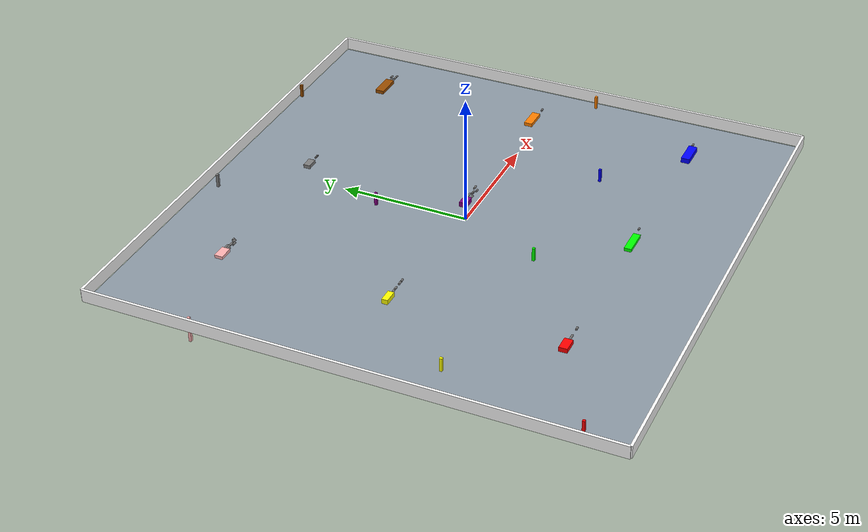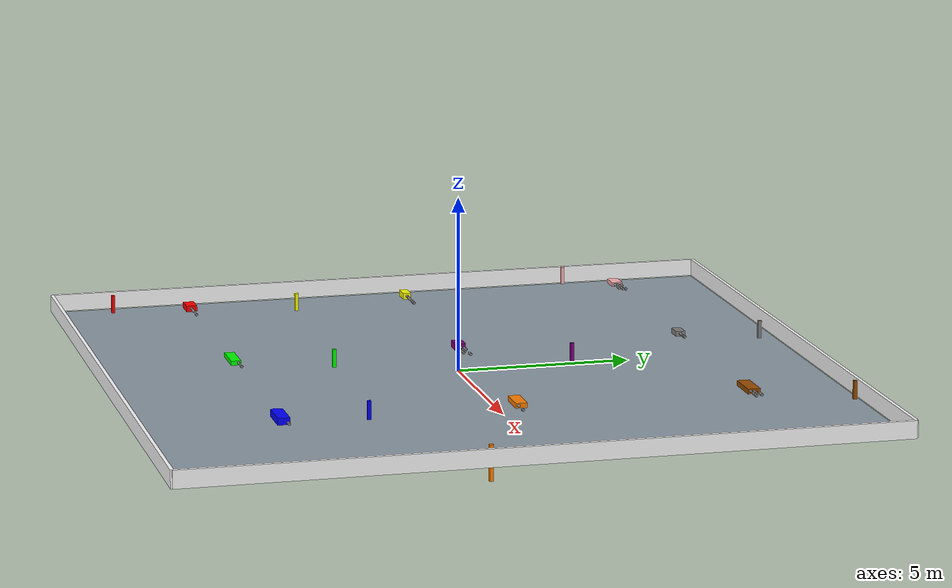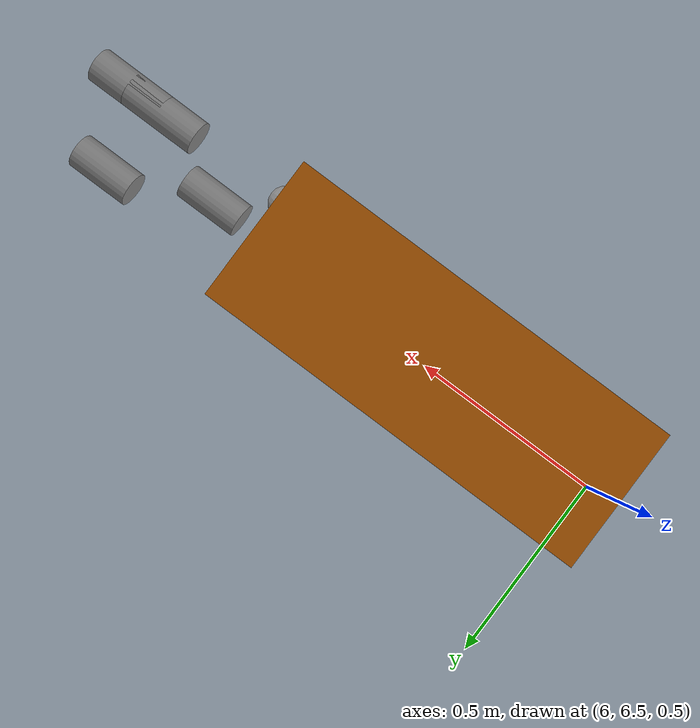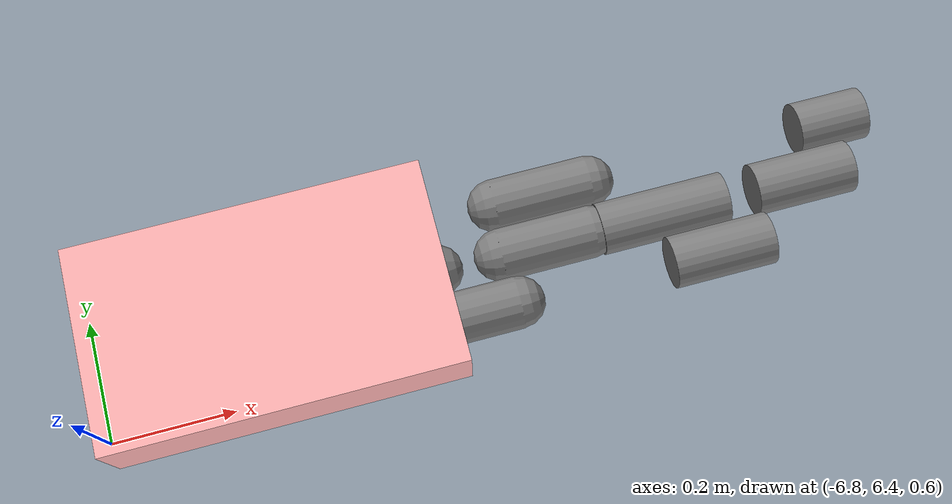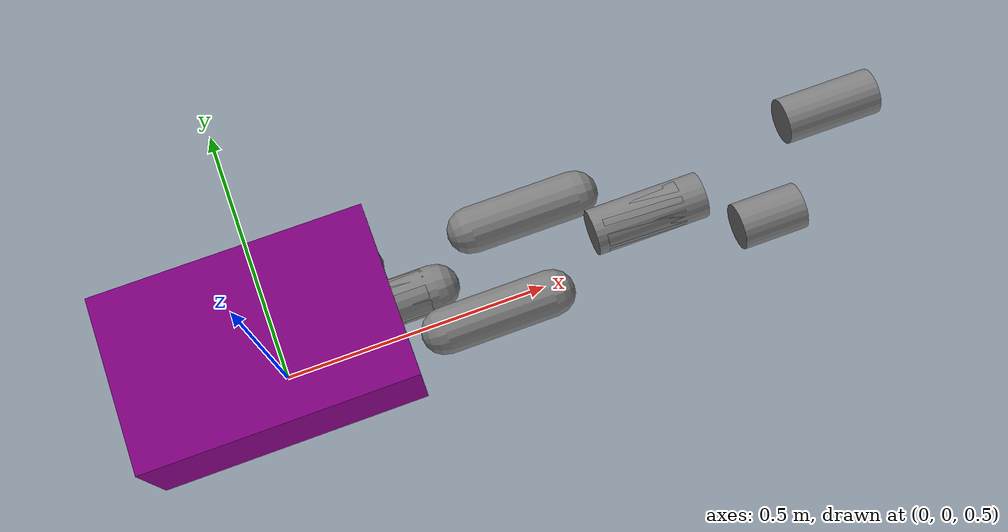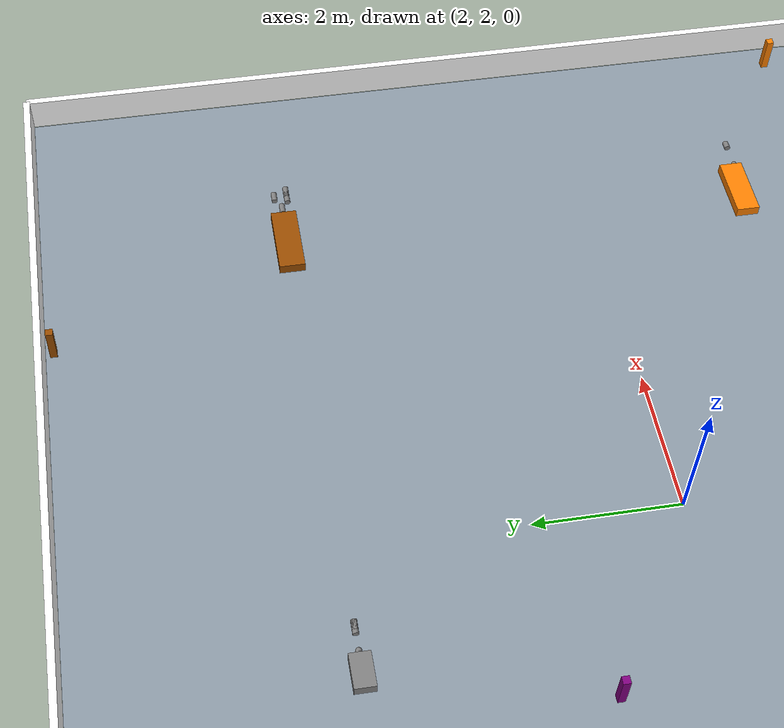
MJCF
<mujoco><option timestep="0.002" /><asset><texture name="checkered" type="2d" builtin="checker" rgb1="0.2 0.3 0.4" rgb2="0.9 0.9 0.9" width="512" height="512" /><material name="MatCheckered" texture="checkered" reflectance="0.5" /><material name="MatPlane" reflectance="0.5" shininess="1" specular="1" /><material name="red" rgba="1 0 0 1" /><material name="green" rgba="0 1 0 1" /><material name="blue" rgba="0 0 1 1" /><material name="yellow" rgba="1 1 0 1" /><material name="purple" rgba="0.5 0 0.5 1" /><material name="orange" rgba="1 0.5 0 1" /><material name="pink" rgba="1 0.7 0.7 1" /><material name="grey" rgba="0.5 0.5 0.5 1" /><material name="brown" rgba="0.6 0.3 0 1" /></asset><worldbody><geom name="floor" type="plane" size="10 10 0.1" pos="0 0 0" material="MatCheckered" /><body name="torso_0" pos="-6.5 -6.5 0.75"><geom name="torso_geom_torso_0" type="box" size="0.2715485036837782 0.1564616013803122 0.08722629893335843" pos="0 0 0" contype="1" conaffinity="1" material="red" /><joint name="torso_0_root" type="free" armature="0" damping="0" limited="false" /><site name="torso_0_site" pos="0 0 0" type="sphere" size="0.01" /><body name="leg_0_1" pos="0.1357742518418891 0 0"><geom name="leg_0_1_upper_geom" type="capsule" fromto="0.0 0.0 0.0 0.13562162647162107 0.0 0.0" size="0.04" /><joint name="leg_0_1_hip_joint" type="ball" damping="2.0" /><body name="leg_0_1_lower" pos="0.13562162647162107 0.0 0.0"><geom name="leg_0_1_lower_geom" type="capsule" fromto="0.13562162647162107 0.0 0.0 0.33354921485505895 0.0 0.0" size="0.04" /><joint name="leg_0_1_knee_joint" type="hinge" axis="0 1 0" range="-90 90" damping="4.0" limited="true" /><body name="leg_0_1_foot" pos="0.33354921485505895 0.0 0.0"><geom name="leg_0_1_foot_geom" type="cylinder" fromto="0.33354921485505895 0.0 0.0 0.4711827492103236 0.0 0.0" size="0.04" /><joint name="leg_0_1_ankle_joint" type="ball" damping="6.0" /></body></body></body></body><geom name="flag_0" type="box" size="0.05 0.05 0.5" pos="-9.50556305023548 -8.293485642836092 0" material="red" contype="1" conaffinity="1" /><body name="torso_1" pos="0 -6.5 0.75"><geom name="torso_geom_torso_1" type="box" size="0.499949666755045 0.13842242802780602 0.0641584101805017" pos="0 0 0" contype="1" conaffinity="2" material="green" /><joint name="torso_1_root" type="free" armature="0" damping="0" limited="false" /><site name="torso_1_site" pos="0 0 0" type="sphere" size="0.01" /><body name="leg_1_1" pos="0 0.06921121401390301 0"><geom name="leg_1_1_upper_geom" type="capsule" fromto="0.0 0.0 0.0 0.17722462562847033 0.0 0.0" size="0.04" /><joint name="leg_1_1_hip_joint" type="ball" damping="2.0" /><body name="leg_1_1_lower" pos="0.17722462562847033 0.0 0.0"><geom name="leg_1_1_lower_geom" type="capsule" fromto="0.17722462562847033 0.0 0.0 0.3434400944607545 0.0 0.0" size="0.04" /><joint name="leg_1_1_knee_joint" type="hinge" axis="0 1 0" range="-90 90" damping="4.0" limited="true" /><body name="leg_1_1_foot" pos="0.3434400944607545 0.0 0.0"><geom name="leg_1_1_foot_geom" type="cylinder" fromto="0.3434400944607545 0.0 0.0 0.447050208322283 0.0 0.0" size="0.04" /><joint name="leg_1_1_ankle_joint" type="ball" damping="6.0" /></body></body></body></body><geom name="flag_1" type="box" size="0.05 0.05 0.5" pos="-1.4032252502028253 -3.293606559201878 0" material="green" contype="1" conaffinity="2" /><body name="torso_2" pos="6.5 -6.5 0.75"><geom name="torso_geom_torso_2" type="box" size="0.4907053094326949 0.16632560117891104 0.09764812327818276" pos="0 0 0" contype="1" conaffinity="3" material="blue" /><joint name="torso_2_root" type="free" armature="0" damping="0" limited="false" /><site name="torso_2_site" pos="0 0 0" type="sphere" size="0.01" /><body name="leg_2_1" pos="0 0.08316280058945552 0"><geom name="leg_2_1_upper_geom" type="capsule" fromto="0.0 0.0 0.0 0.11267121036545757 0.0 0.0" size="0.04" /><joint name="leg_2_1_hip_joint" type="ball" damping="2.0" /><body name="leg_2_1_lower" pos="0.11267121036545757 0.0 0.0"><geom name="leg_2_1_lower_geom" type="capsule" fromto="0.11267121036545757 0.0 0.0 0.27223789071704746 0.0 0.0" size="0.04" /><joint name="leg_2_1_knee_joint" type="hinge" axis="0 1 0" range="-90 90" damping="4.0" limited="true" /><body name="leg_2_1_foot" pos="0.27223789071704746 0.0 0.0"><geom name="leg_2_1_foot_geom" type="cylinder" fromto="0.27223789071704746 0.0 0.0 0.4195034054328575 0.0 0.0" size="0.04" /><joint name="leg_2_1_ankle_joint" type="ball" damping="6.0" /></body></body></body></body><geom name="flag_2" type="box" size="0.05 0.05 0.5" pos="4.497045453951098 -3.629778216502767 0" material="blue" contype="1" conaffinity="3" /><body name="torso_3" pos="-6.5 0 0.75"><geom name="torso_geom_torso_3" type="box" size="0.25973375803101256 0.11461685359610245 0.09213482328298264" pos="0 0 0" contype="1" conaffinity="4" material="yellow" /><joint name="torso_3_root" type="free" armature="0" damping="0" limited="false" /><site name="torso_3_site" pos="0 0 0" type="sphere" size="0.01" /><body name="leg_3_1" pos="0.12986687901550628 0 0"><geom name="leg_3_1_upper_geom" type="capsule" fromto="0.0 0.0 0.0 0.14390702247672765 0.0 0.0" size="0.04" /><joint name="leg_3_1_hip_joint" type="ball" damping="2.0" /><body name="leg_3_1_lower" pos="0.14390702247672765 0.0 0.0"><geom name="leg_3_1_lower_geom" type="capsule" fromto="0.14390702247672765 0.0 0.0 0.29534469833342625 0.0 0.0" size="0.04" /><joint name="leg_3_1_knee_joint" type="hinge" axis="0 1 0" range="-90 90" damping="4.0" limited="true" /><body name="leg_3_1_foot" pos="0.29534469833342625 0.0 0.0"><geom name="leg_3_1_foot_geom" type="cylinder" fromto="0.29534469833342625 0.0 0.0 0.43432670351174785 0.0 0.0" size="0.04" /><joint name="leg_3_1_ankle_joint" type="ball" damping="6.0" /></body></body></body><body name="leg_3_2" pos="0.12986687901550628 0 0"><geom name="leg_3_2_upper_geom" type="capsule" fromto="0.0 0.0 0.0 0.17194260274238252 0.0 0.0" size="0.04" /><joint name="leg_3_2_hip_joint" type="ball" damping="2.0" /><body name="leg_3_2_lower" pos="0.17194260274238252 0.0 0.0"><geom name="leg_3_2_lower_geom" type="capsule" fromto="0.17194260274238252 0.0 0.0 0.36419859897490403 0.0 0.0" size="0.04" /><joint name="leg_3_2_knee_joint" type="hinge" axis="0 1 0" range="-90 90" damping="4.0" limited="true" /><body name="leg_3_2_foot" pos="0.36419859897490403 0.0 0.0"><geom name="leg_3_2_foot_geom" type="cylinder" fromto="0.36419859897490403 0.0 0.0 0.5014318890749311 0.0 0.0" size="0.04" /><joint name="leg_3_2_ankle_joint" type="ball" damping="6.0" /></body></body></body></body><geom name="flag_3" type="box" size="0.05 0.05 0.5" pos="-8.467390898868404 -2.8947146752399924 0" material="yellow" contype="1" conaffinity="4" /><body name="torso_4" pos="0 0 0.75"><geom name="torso_geom_torso_4" type="box" size="0.2315539002163724 0.14996227838703424 0.09444832378987704" pos="0 0 0" contype="1" conaffinity="5" material="purple" /><joint name="torso_4_root" type="free" armature="0" damping="0" limited="false" /><site name="torso_4_site" pos="0 0 0" type="sphere" size="0.01" /><body name="leg_4_1" pos="-0.1157769501081862 0 0"><geom name="leg_4_1_upper_geom" type="capsule" fromto="0.0 0.0 0.0 0.10721426061670214 0.0 0.0" size="0.04" /><joint name="leg_4_1_hip_joint" type="ball" damping="2.0" /><body name="leg_4_1_lower" pos="0.10721426061670214 0.0 0.0"><geom name="leg_4_1_lower_geom" type="capsule" fromto="0.10721426061670214 0.0 0.0 0.2950198339300012 0.0 0.0" size="0.04" /><joint name="leg_4_1_knee_joint" type="hinge" axis="0 1 0" range="-90 90" damping="4.0" limited="true" /><body name="leg_4_1_foot" pos="0.2950198339300012 0.0 0.0"><geom name="leg_4_1_foot_geom" type="cylinder" fromto="0.2950198339300012 0.0 0.0 0.49311512302213123 0.0 0.0" size="0.04" /><joint name="leg_4_1_ankle_joint" type="ball" damping="6.0" /></body></body></body><body name="leg_4_2" pos="-0.1157769501081862 0 0"><geom name="leg_4_2_upper_geom" type="capsule" fromto="0.0 0.0 0.0 0.12207754287495746 0.0 0.0" size="0.04" /><joint name="leg_4_2_hip_joint" type="ball" damping="2.0" /><body name="leg_4_2_lower" pos="0.12207754287495746 0.0 0.0"><geom name="leg_4_2_lower_geom" type="capsule" fromto="0.12207754287495746 0.0 0.0 0.2965197657220431 0.0 0.0" size="0.04" /><joint name="leg_4_2_knee_joint" type="hinge" axis="0 1 0" range="-90 90" damping="4.0" limited="true" /><body name="leg_4_2_foot" pos="0.2965197657220431 0.0 0.0"><geom name="leg_4_2_foot_geom" type="cylinder" fromto="0.2965197657220431 0.0 0.0 0.43600588844838273 0.0 0.0" size="0.04" /><joint name="leg_4_2_ankle_joint" type="ball" damping="6.0" /></body></body></body><body name="leg_4_3" pos="0 -0.07498113919351712 0"><geom name="leg_4_3_upper_geom" type="capsule" fromto="0.0 0.0 0.0 0.146348428184574 0.0 0.0" size="0.04" /><joint name="leg_4_3_hip_joint" type="ball" damping="2.0" /><body name="leg_4_3_lower" pos="0.146348428184574 0.0 0.0"><geom name="leg_4_3_lower_geom" type="capsule" fromto="0.146348428184574 0.0 0.0 0.334939287919123 0.0 0.0" size="0.04" /><joint name="leg_4_3_knee_joint" type="hinge" axis="0 1 0" range="-90 90" damping="4.0" limited="true" /><body name="leg_4_3_foot" pos="0.334939287919123 0.0 0.0"><geom name="leg_4_3_foot_geom" type="cylinder" fromto="0.334939287919123 0.0 0.0 0.4473874776007986 0.0 0.0" size="0.04" /><joint name="leg_4_3_ankle_joint" type="ball" damping="6.0" /></body></body></body><body name="leg_4_4" pos="0 0.07498113919351712 0"><geom name="leg_4_4_upper_geom" type="capsule" fromto="0.0 0.0 0.0 0.1950478481356456 0.0 0.0" size="0.04" /><joint name="leg_4_4_hip_joint" type="ball" damping="2.0" /><body name="leg_4_4_lower" pos="0.1950478481356456 0.0 0.0"><geom name="leg_4_4_lower_geom" type="capsule" fromto="0.1950478481356456 0.0 0.0 0.3833317117301943 0.0 0.0" size="0.04" /><joint name="leg_4_4_knee_joint" type="hinge" axis="0 1 0" range="-90 90" damping="4.0" limited="true" /><body name="leg_4_4_foot" pos="0.3833317117301943 0.0 0.0"><geom name="leg_4_4_foot_geom" type="cylinder" fromto="0.3833317117301943 0.0 0.0 0.5519253821454432 0.0 0.0" size="0.04" /><joint name="leg_4_4_ankle_joint" type="ball" damping="6.0" /></body></body></body></body><geom name="flag_4" type="box" size="0.05 0.05 0.5" pos="-0.4418685100386583 3.4719954233604944 0" material="purple" contype="1" conaffinity="5" /><body name="torso_5" pos="6.5 0 0.75"><geom name="torso_geom_torso_5" type="box" size="0.4314175594061537 0.1595285614907394 0.06890047664544138" pos="0 0 0" contype="1" conaffinity="6" material="orange" /><joint name="torso_5_root" type="free" armature="0" damping="0" limited="false" /><site name="torso_5_site" pos="0 0 0" type="sphere" size="0.01" /><body name="leg_5_1" pos="0 -0.0797642807453697 0"><geom name="leg_5_1_upper_geom" type="capsule" fromto="0.0 0.0 0.0 0.16135347268223516 0.0 0.0" size="0.04" /><joint name="leg_5_1_hip_joint" type="ball" damping="2.0" /><body name="leg_5_1_lower" pos="0.16135347268223516 0.0 0.0"><geom name="leg_5_1_lower_geom" type="capsule" fromto="0.16135347268223516 0.0 0.0 0.3162003177663587 0.0 0.0" size="0.04" /><joint name="leg_5_1_knee_joint" type="hinge" axis="0 1 0" range="-90 90" damping="4.0" limited="true" /><body name="leg_5_1_foot" pos="0.3162003177663587 0.0 0.0"><geom name="leg_5_1_foot_geom" type="cylinder" fromto="0.3162003177663587 0.0 0.0 0.4261156051908098 0.0 0.0" size="0.04" /><joint name="leg_5_1_ankle_joint" type="ball" damping="6.0" /></body></body></body></body><geom name="flag_5" type="box" size="0.05 0.05 0.5" pos="9.639758181068494 -1.5465828669726898 0" material="orange" contype="1" conaffinity="6" /><body name="torso_6" pos="-6.5 6.5 0.75"><geom name="torso_geom_torso_6" type="box" size="0.2717046804219661 0.1572042956546676 0.061619634218001235" pos="0 0 0" contype="1" conaffinity="7" material="pink" /><joint name="torso_6_root" type="free" armature="0" damping="0" limited="false" /><site name="torso_6_site" pos="0 0 0" type="sphere" size="0.01" /><body name="leg_6_1" pos="-0.13585234021098305 0 0"><geom name="leg_6_1_upper_geom" type="capsule" fromto="0.0 0.0 0.0 0.13925627251408038 0.0 0.0" size="0.04" /><joint name="leg_6_1_hip_joint" type="ball" damping="2.0" /><body name="leg_6_1_lower" pos="0.13925627251408038 0.0 0.0"><geom name="leg_6_1_lower_geom" type="capsule" fromto="0.13925627251408038 0.0 0.0 0.2545689868484067 0.0 0.0" size="0.04" /><joint name="leg_6_1_knee_joint" type="hinge" axis="0 1 0" range="-90 90" damping="4.0" limited="true" /><body name="leg_6_1_foot" pos="0.2545689868484067 0.0 0.0"><geom name="leg_6_1_foot_geom" type="cylinder" fromto="0.2545689868484067 0.0 0.0 0.45295433204825297 0.0 0.0" size="0.04" /><joint name="leg_6_1_ankle_joint" type="ball" damping="6.0" /></body></body></body><body name="leg_6_2" pos="0.13585234021098305 0 0"><geom name="leg_6_2_upper_geom" type="capsule" fromto="0.0 0.0 0.0 0.11025670490450876 0.0 0.0" size="0.04" /><joint name="leg_6_2_hip_joint" type="ball" damping="2.0" /><body name="leg_6_2_lower" pos="0.11025670490450876 0.0 0.0"><geom name="leg_6_2_lower_geom" type="capsule" fromto="0.11025670490450876 0.0 0.0 0.25547199230233997 0.0 0.0" size="0.04" /><joint name="leg_6_2_knee_joint" type="hinge" axis="0 1 0" range="-90 90" damping="4.0" limited="true" /><body name="leg_6_2_foot" pos="0.25547199230233997 0.0 0.0"><geom name="leg_6_2_foot_geom" type="cylinder" fromto="0.25547199230233997 0.0 0.0 0.41005586585052756 0.0 0.0" size="0.04" /><joint name="leg_6_2_ankle_joint" type="ball" damping="6.0" /></body></body></body><body name="leg_6_3" pos="0 0.0786021478273338 0"><geom name="leg_6_3_upper_geom" type="capsule" fromto="0.0 0.0 0.0 0.1834326909225371 0.0 0.0" size="0.04" /><joint name="leg_6_3_hip_joint" type="ball" damping="2.0" /><body name="leg_6_3_lower" pos="0.1834326909225371 0.0 0.0"><geom name="leg_6_3_lower_geom" type="capsule" fromto="0.1834326909225371 0.0 0.0 0.33356441175308416 0.0 0.0" size="0.04" /><joint name="leg_6_3_knee_joint" type="hinge" axis="0 1 0" range="-90 90" damping="4.0" limited="true" /><body name="leg_6_3_foot" pos="0.33356441175308416 0.0 0.0"><geom name="leg_6_3_foot_geom" type="cylinder" fromto="0.33356441175308416 0.0 0.0 0.44201205218942974 0.0 0.0" size="0.04" /><joint name="leg_6_3_ankle_joint" type="ball" damping="6.0" /></body></body></body><body name="leg_6_4" pos="0 -0.0786021478273338 0"><geom name="leg_6_4_upper_geom" type="capsule" fromto="0.0 0.0 0.0 0.1270739612095142 0.0 0.0" size="0.04" /><joint name="leg_6_4_hip_joint" type="ball" damping="2.0" /><body name="leg_6_4_lower" pos="0.1270739612095142 0.0 0.0"><geom name="leg_6_4_lower_geom" type="capsule" fromto="0.1270739612095142 0.0 0.0 0.23764648829598609 0.0 0.0" size="0.04" /><joint name="leg_6_4_knee_joint" type="hinge" axis="0 1 0" range="-90 90" damping="4.0" limited="true" /><body name="leg_6_4_foot" pos="0.23764648829598609 0.0 0.0"><geom name="leg_6_4_foot_geom" type="cylinder" fromto="0.23764648829598609 0.0 0.0 0.39365109933968484 0.0 0.0" size="0.04" /><joint name="leg_6_4_ankle_joint" type="ball" damping="6.0" /></body></body></body></body><geom name="flag_6" type="box" size="0.05 0.05 0.5" pos="-9.934225239682554 5.824650458556979 0" material="pink" contype="1" conaffinity="7" /><body name="torso_7" pos="0 6.5 0.75"><geom name="torso_geom_torso_7" type="box" size="0.22337774622492437 0.13548108736951733 0.0723163127633951" pos="0 0 0" contype="1" conaffinity="8" material="grey" /><joint name="torso_7_root" type="free" armature="0" damping="0" limited="false" /><site name="torso_7_site" pos="0 0 0" type="sphere" size="0.01" /><body name="leg_7_1" pos="-0.11168887311246219 0 0"><geom name="leg_7_1_upper_geom" type="capsule" fromto="0.0 0.0 0.0 0.1271388670468418 0.0 0.0" size="0.04" /><joint name="leg_7_1_hip_joint" type="ball" damping="2.0" /><body name="leg_7_1_lower" pos="0.1271388670468418 0.0 0.0"><geom name="leg_7_1_lower_geom" type="capsule" fromto="0.1271388670468418 0.0 0.0 0.23107350108565633 0.0 0.0" size="0.04" /><joint name="leg_7_1_knee_joint" type="hinge" axis="0 1 0" range="-90 90" damping="4.0" limited="true" /><body name="leg_7_1_foot" pos="0.23107350108565633 0.0 0.0"><geom name="leg_7_1_foot_geom" type="cylinder" fromto="0.23107350108565633 0.0 0.0 0.4138833997737046 0.0 0.0" size="0.04" /><joint name="leg_7_1_ankle_joint" type="ball" damping="6.0" /></body></body></body><body name="leg_7_2" pos="-0.11168887311246219 0 0"><geom name="leg_7_2_upper_geom" type="capsule" fromto="0.0 0.0 0.0 0.12459998695623453 0.0 0.0" size="0.04" /><joint name="leg_7_2_hip_joint" type="ball" damping="2.0" /><body name="leg_7_2_lower" pos="0.12459998695623453 0.0 0.0"><geom name="leg_7_2_lower_geom" type="capsule" fromto="0.12459998695623453 0.0 0.0 0.25724954319954624 0.0 0.0" size="0.04" /><joint name="leg_7_2_knee_joint" type="hinge" axis="0 1 0" range="-90 90" damping="4.0" limited="true" /><body name="leg_7_2_foot" pos="0.25724954319954624 0.0 0.0"><geom name="leg_7_2_foot_geom" type="cylinder" fromto="0.25724954319954624 0.0 0.0 0.38328433784226945 0.0 0.0" size="0.04" /><joint name="leg_7_2_ankle_joint" type="ball" damping="6.0" /></body></body></body></body><geom name="flag_7" type="box" size="0.05 0.05 0.5" pos="-1.7508815370407698 9.530579786649701 0" material="grey" contype="1" conaffinity="8" /><body name="torso_8" pos="6.5 6.5 0.75"><geom name="torso_geom_torso_8" type="box" size="0.48970260473817084 0.17706476752130434 0.06990537791543541" pos="0 0 0" contype="1" conaffinity="9" material="brown" /><joint name="torso_8_root" type="free" armature="0" damping="0" limited="false" /><site name="torso_8_site" pos="0 0 0" type="sphere" size="0.01" /><body name="leg_8_1" pos="0 -0.08853238376065217 0"><geom name="leg_8_1_upper_geom" type="capsule" fromto="0.0 0.0 0.0 0.14492323134518384 0.0 0.0" size="0.04" /><joint name="leg_8_1_hip_joint" type="ball" damping="2.0" /><body name="leg_8_1_lower" pos="0.14492323134518384 0.0 0.0"><geom name="leg_8_1_lower_geom" type="capsule" fromto="0.14492323134518384 0.0 0.0 0.28661779988010794 0.0 0.0" size="0.04" /><joint name="leg_8_1_knee_joint" type="hinge" axis="0 1 0" range="-90 90" damping="4.0" limited="true" /><body name="leg_8_1_foot" pos="0.28661779988010794 0.0 0.0"><geom name="leg_8_1_foot_geom" type="cylinder" fromto="0.28661779988010794 0.0 0.0 0.4695453059619124 0.0 0.0" size="0.04" /><joint name="leg_8_1_ankle_joint" type="ball" damping="6.0" /></body></body></body><body name="leg_8_2" pos="-0.24485130236908542 0 0"><geom name="leg_8_2_upper_geom" type="capsule" fromto="0.0 0.0 0.0 0.16776006517678993 0.0 0.0" size="0.04" /><joint name="leg_8_2_hip_joint" type="ball" damping="2.0" /><body name="leg_8_2_lower" pos="0.16776006517678993 0.0 0.0"><geom name="leg_8_2_lower_geom" type="capsule" fromto="0.16776006517678993 0.0 0.0 0.30491274345857977 0.0 0.0" size="0.04" /><joint name="leg_8_2_knee_joint" type="hinge" axis="0 1 0" range="-90 90" damping="4.0" limited="true" /><body name="leg_8_2_foot" pos="0.30491274345857977 0.0 0.0"><geom name="leg_8_2_foot_geom" type="cylinder" fromto="0.30491274345857977 0.0 0.0 0.4526553588463047 0.0 0.0" size="0.04" /><joint name="leg_8_2_ankle_joint" type="ball" damping="6.0" /></body></body></body><body name="leg_8_3" pos="0 0.08853238376065217 0"><geom name="leg_8_3_upper_geom" type="capsule" fromto="0.0 0.0 0.0 0.14291870560021586 0.0 0.0" size="0.04" /><joint name="leg_8_3_hip_joint" type="ball" damping="2.0" /><body name="leg_8_3_lower" pos="0.14291870560021586 0.0 0.0"><geom name="leg_8_3_lower_geom" type="capsule" fromto="0.14291870560021586 0.0 0.0 0.3113160470268765 0.0 0.0" size="0.04" /><joint name="leg_8_3_knee_joint" type="hinge" axis="0 1 0" range="-90 90" damping="4.0" limited="true" /><body name="leg_8_3_foot" pos="0.3113160470268765 0.0 0.0"><geom name="leg_8_3_foot_geom" type="cylinder" fromto="0.3113160470268765 0.0 0.0 0.456784628927765 0.0 0.0" size="0.04" /><joint name="leg_8_3_ankle_joint" type="ball" damping="6.0" /></body></body></body><body name="leg_8_4" pos="0 -0.08853238376065217 0"><geom name="leg_8_4_upper_geom" type="capsule" fromto="0.0 0.0 0.0 0.13940369271260386 0.0 0.0" size="0.04" /><joint name="leg_8_4_hip_joint" type="ball" damping="2.0" /><body name="leg_8_4_lower" pos="0.13940369271260386 0.0 0.0"><geom name="leg_8_4_lower_geom" type="capsule" fromto="0.13940369271260386 0.0 0.0 0.33763773478187664 0.0 0.0" size="0.04" /><joint name="leg_8_4_knee_joint" type="hinge" axis="0 1 0" range="-90 90" damping="4.0" limited="true" /><body name="leg_8_4_foot" pos="0.33763773478187664 0.0 0.0"><geom name="leg_8_4_foot_geom" type="cylinder" fromto="0.33763773478187664 0.0 0.0 0.5141559283619651 0.0 0.0" size="0.04" /><joint name="leg_8_4_ankle_joint" type="ball" damping="6.0" /></body></body></body></body><geom name="flag_8" type="box" size="0.05 0.05 0.5" pos="5.609720079087355 9.884878382219924 0" material="brown" contype="1" conaffinity="9" /><geom name="north_wall" type="box" pos="0 10.05 0.25" size="10.05 0.05 0.25" material="MatPlane" /><geom name="south_wall" type="box" pos="0 -10.05 0.25" size="10.05 0.05 0.25" material="MatPlane" /><geom name="east_wall" type="box" pos="10.05 0 0.25" size="0.05 10.05 0.25" material="MatPlane" /><geom name="west_wall" type="box" pos="-10.05 0 0.25" size="0.05 10.05 0.25" material="MatPlane" /></worldbody><actuator><motor name="leg_0_1_hip_motor" joint="leg_0_1_hip_joint" ctrllimited="true" ctrlrange="-1 1" gear="200" /><motor name="leg_0_1_ankle_joint_motor" joint="leg_0_1_ankle_joint" ctrllimited="true" ctrlrange="-1 1" gear="200" /><motor name="leg_1_1_hip_motor" joint="leg_1_1_hip_joint" ctrllimited="true" ctrlrange="-1 1" gear="200" /><motor name="leg_1_1_ankle_joint_motor" joint="leg_1_1_ankle_joint" ctrllimited="true" ctrlrange="-1 1" gear="200" /><motor name="leg_2_1_hip_motor" joint="leg_2_1_hip_joint" ctrllimited="true" ctrlrange="-1 1" gear="200" /><motor name="leg_2_1_ankle_joint_motor" joint="leg_2_1_ankle_joint" ctrllimited="true" ctrlrange="-1 1" gear="200" /><motor name="leg_3_1_hip_motor" joint="leg_3_1_hip_joint" ctrllimited="true" ctrlrange="-1 1" gear="200" /><motor name="leg_3_1_ankle_joint_motor" joint="leg_3_1_ankle_joint" ctrllimited="true" ctrlrange="-1 1" gear="200" /><motor name="leg_3_2_hip_motor" joint="leg_3_2_hip_joint" ctrllimited="true" ctrlrange="-1 1" gear="200" /><motor name="leg_3_2_ankle_joint_motor" joint="leg_3_2_ankle_joint" ctrllimited="true" ctrlrange="-1 1" gear="200" /><motor name="leg_4_1_hip_motor" joint="leg_4_1_hip_joint" ctrllimited="true" ctrlrange="-1 1" gear="200" /><motor name="leg_4_1_ankle_joint_motor" joint="leg_4_1_ankle_joint" ctrllimited="true" ctrlrange="-1 1" gear="200" /><motor name="leg_4_2_hip_motor" joint="leg_4_2_hip_joint" ctrllimited="true" ctrlrange="-1 1" gear="200" /><motor name="leg_4_2_ankle_joint_motor" joint="leg_4_2_ankle_joint" ctrllimited="true" ctrlrange="-1 1" gear="200" /><motor name="leg_4_3_hip_motor" joint="leg_4_3_hip_joint" ctrllimited="true" ctrlrange="-1 1" gear="200" /><motor name="leg_4_3_ankle_joint_motor" joint="leg_4_3_ankle_joint" ctrllimited="true" ctrlrange="-1 1" gear="200" /><motor name="leg_4_4_hip_motor" joint="leg_4_4_hip_joint" ctrllimited="true" ctrlrange="-1 1" gear="200" /><motor name="leg_4_4_ankle_joint_motor" joint="leg_4_4_ankle_joint" ctrllimited="true" ctrlrange="-1 1" gear="200" /><motor name="leg_5_1_hip_motor" joint="leg_5_1_hip_joint" ctrllimited="true" ctrlrange="-1 1" gear="200" /><motor name="leg_5_1_ankle_joint_motor" joint="leg_5_1_ankle_joint" ctrllimited="true" ctrlrange="-1 1" gear="200" /><motor name="leg_6_1_hip_motor" joint="leg_6_1_hip_joint" ctrllimited="true" ctrlrange="-1 1" gear="200" /><motor name="leg_6_1_ankle_joint_motor" joint="leg_6_1_ankle_joint" ctrllimited="true" ctrlrange="-1 1" gear="200" /><motor name="leg_6_2_hip_motor" joint="leg_6_2_hip_joint" ctrllimited="true" ctrlrange="-1 1" gear="200" /><motor name="leg_6_2_ankle_joint_motor" joint="leg_6_2_ankle_joint" ctrllimited="true" ctrlrange="-1 1" gear="200" /><motor name="leg_6_3_hip_motor" joint="leg_6_3_hip_joint" ctrllimited="true" ctrlrange="-1 1" gear="200" /><motor name="leg_6_3_ankle_joint_motor" joint="leg_6_3_ankle_joint" ctrllimited="true" ctrlrange="-1 1" gear="200" /><motor name="leg_6_4_hip_motor" joint="leg_6_4_hip_joint" ctrllimited="true" ctrlrange="-1 1" gear="200" /><motor name="leg_6_4_ankle_joint_motor" joint="leg_6_4_ankle_joint" ctrllimited="true" ctrlrange="-1 1" gear="200" /><motor name="leg_7_1_hip_motor" joint="leg_7_1_hip_joint" ctrllimited="true" ctrlrange="-1 1" gear="200" /><motor name="leg_7_1_ankle_joint_motor" joint="leg_7_1_ankle_joint" ctrllimited="true" ctrlrange="-1 1" gear="200" /><motor name="leg_7_2_hip_motor" joint="leg_7_2_hip_joint" ctrllimited="true" ctrlrange="-1 1" gear="200" /><motor name="leg_7_2_ankle_joint_motor" joint="leg_7_2_ankle_joint" ctrllimited="true" ctrlrange="-1 1" gear="200" /><motor name="leg_8_1_hip_motor" joint="leg_8_1_hip_joint" ctrllimited="true" ctrlrange="-1 1" gear="200" /><motor name="leg_8_1_ankle_joint_motor" joint="leg_8_1_ankle_joint" ctrllimited="true" ctrlrange="-1 1" gear="200" /><motor name="leg_8_2_hip_motor" joint="leg_8_2_hip_joint" ctrllimited="true" ctrlrange="-1 1" gear="200" /><motor name="leg_8_2_ankle_joint_motor" joint="leg_8_2_ankle_joint" ctrllimited="true" ctrlrange="-1 1" gear="200" /><motor name="leg_8_3_hip_motor" joint="leg_8_3_hip_joint" ctrllimited="true" ctrlrange="-1 1" gear="200" /><motor name="leg_8_3_ankle_joint_motor" joint="leg_8_3_ankle_joint" ctrllimited="true" ctrlrange="-1 1" gear="200" /><motor name="leg_8_4_hip_motor" joint="leg_8_4_hip_joint" ctrllimited="true" ctrlrange="-1 1" gear="200" /><motor name="leg_8_4_ankle_joint_motor" joint="leg_8_4_ankle_joint" ctrllimited="true" ctrlrange="-1 1" gear="200" /></actuator><sensor><accelerometer name="torso_0_accel" site="torso_0_site" /><gyro name="torso_0_gyro" site="torso_0_site" /><accelerometer name="torso_1_accel" site="torso_1_site" /><gyro name="torso_1_gyro" site="torso_1_site" /><accelerometer name="torso_2_accel" site="torso_2_site" /><gyro name="torso_2_gyro" site="torso_2_site" /><accelerometer name="torso_3_accel" site="torso_3_site" /><gyro name="torso_3_gyro" site="torso_3_site" /><accelerometer name="torso_4_accel" site="torso_4_site" /><gyro name="torso_4_gyro" site="torso_4_site" /><accelerometer name="torso_5_accel" site="torso_5_site" /><gyro name="torso_5_gyro" site="torso_5_site" /><accelerometer name="torso_6_accel" site="torso_6_site" /><gyro name="torso_6_gyro" site="torso_6_site" /><accelerometer name="torso_7_accel" site="torso_7_site" /><gyro name="torso_7_gyro" site="torso_7_site" /><accelerometer name="torso_8_accel" site="torso_8_site" /><gyro name="torso_8_gyro" site="torso_8_site" /></sensor></mujoco>
